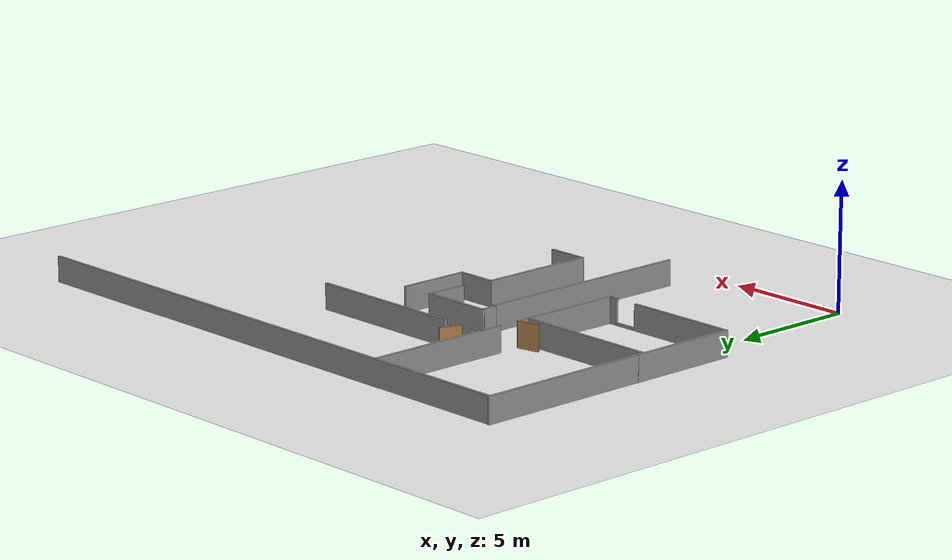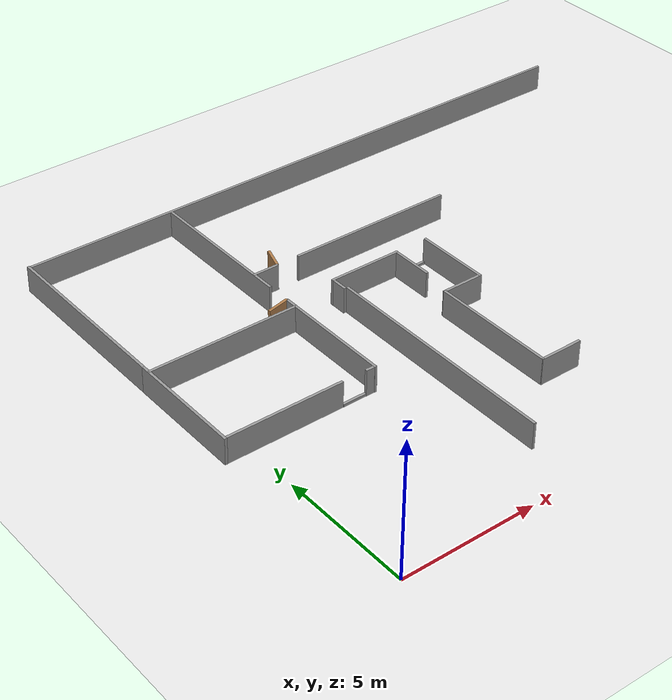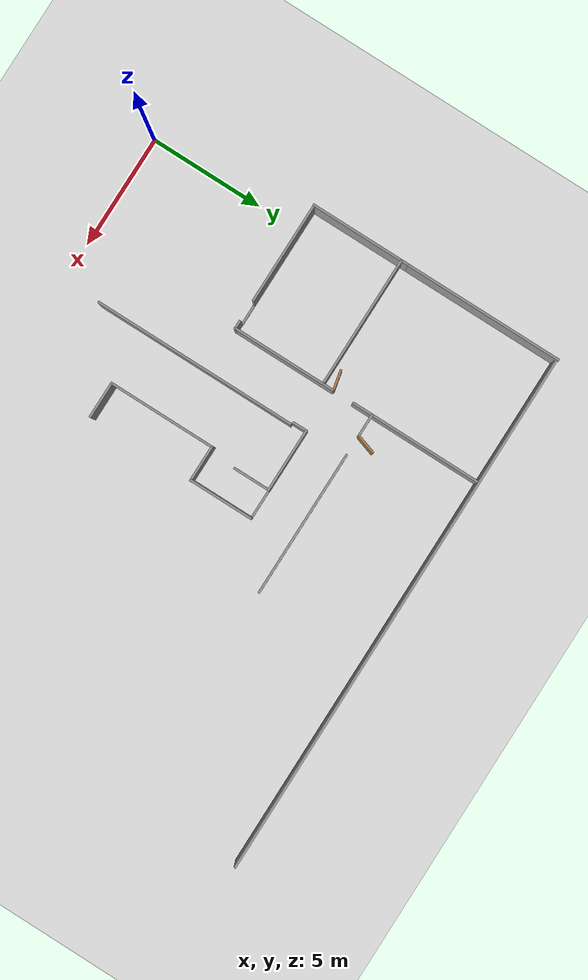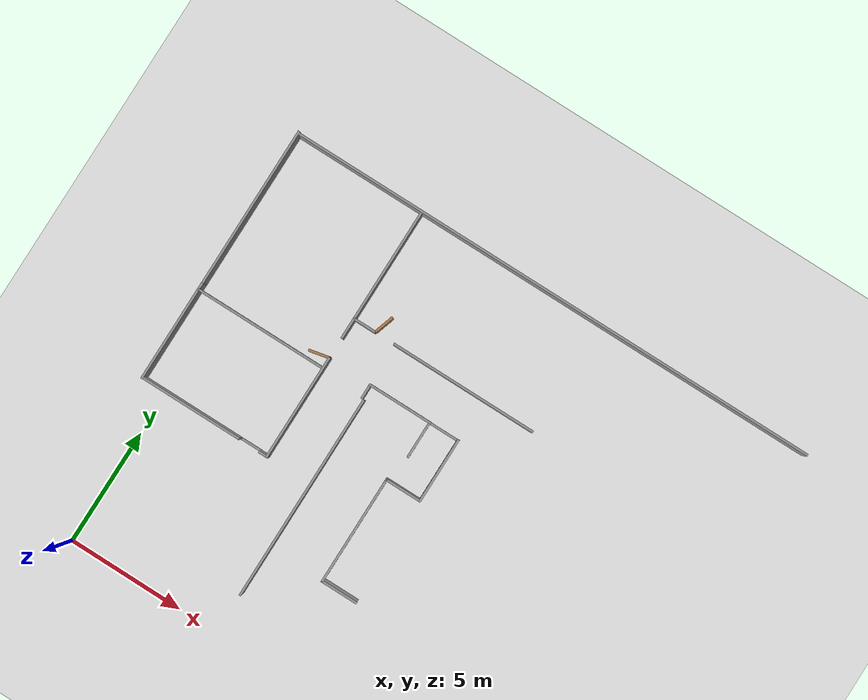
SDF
<sdf version="1.6">
 <world name="default">
  <model name="ground_plane">
   <static>1</static>
   <link name="link">
    <collision name="collision">
     <geometry><plane><normal>0 0 1</normal><size>100 100</size></plane></geometry>
     <surface><friction><ode><mu>100</mu><mu2>50</mu2></ode></friction></surface>
    </collision>
    <visual name="visual">
     <cast_shadows>0</cast_shadows>
     <geometry><plane><normal>0 0 1</normal><size>100 100</size></plane></geometry>
     <material>
      <script><uri>file://media/materials/scripts/gazebo.material</uri><name>Gazebo/WhiteGlow</name></script>
     </material>
    </visual>
   </link>
  </model>
  <model name="L81">
   <link name="link_clone">
    <pose>2.36987 17.6336 -0 0 -0 0</pose>
    <inertial>
     <mass>1.01184</mass>
     <inertia>
      <ixx>0.0851633</ixx>
      <ixy>0</ixy>
      <ixz>0</ixz>
      <iyy>4.20635</iyy>
      <iyz>0</iyz>
      <izz>4.12288</izz>
     </inertia>
    </inertial>
    <visual name="visual">
     <geometry><box><size>6.99182 0.1 1</size></box></geometry>
     <material>
      <script><name>Gazebo/Grey</name><uri>file://media/materials/scripts/gazebo.material</uri></script>
      <shader type="pixel"><normal_map>__default__</normal_map></shader>
      <ambient>0.3 0.3 0.3 1</ambient>
      <diffuse>0.7 0.7 0.7 1</diffuse>
      <specular>0.01 0.01 0.01 1</specular>
      <emissive>0 0 0 1</emissive>
     </material>
    </visual>
    <collision name="collision">
     <geometry><box><size>6.99182 0.1 1</size></box></geometry>
     <surface>
      <friction>
       <ode><mu>1</mu><mu2>1</mu2><fdir1>0 0 0</fdir1><slip1>0</slip1><slip2>0</slip2></ode>
       <torsional>
        <coefficient>1</coefficient>
        <patch_radius>0</patch_radius>
        <surface_radius>0</surface_radius>
        <use_patch_radius>1</use_patch_radius>
        <ode><slip>0</slip></ode>
       </torsional>
      </friction>
      <bounce><restitution_coefficient>0</restitution_coefficient><threshold>1e+06</threshold></bounce>
      <contact>
       <collide_without_contact>0</collide_without_contact>
       <collide_without_contact_bitmask>1</collide_without_contact_bitmask>
       <collide_bitmask>1</collide_bitmask>
       <ode>
        <soft_cfm>0</soft_cfm>
        <soft_erp>0.2</soft_erp>
        <kp>1e+13</kp>
        <kd>1</kd>
        <max_vel>0.01</max_vel>
        <min_depth>0</min_depth>
       </ode>
       <bullet>
        <split_impulse>1</split_impulse>
        <split_impulse_penetration_threshold>-0.01</split_impulse_penetration_threshold>
        <soft_cfm>0</soft_cfm>
        <soft_erp>0.2</soft_erp>
        <kp>1e+13</kp>
        <kd>1</kd>
       </bullet>
      </contact>
     </surface>
    </collision>
   </link>
   <link name="link_clone_0">
    <pose>-1.0415 29.3775 0 0 -0 0</pose>
    <inertial>
     <mass>1</mass>
     <inertia>
      <ixx>0.166667</ixx>
      <ixy>0</ixy>
      <ixz>0</ixz>
      <iyy>0.166667</iyy>
      <iyz>0</iyz>
      <izz>0.166667</izz>
     </inertia>
    </inertial>
    <visual name="visual">
     <geometry><box><size>0.1 23.38 1</size></box></geometry>
     <material>
      <script><name>Gazebo/Grey</name><uri>file://media/materials/scripts/gazebo.material</uri></script>
      <shader type="pixel"><normal_map>__default__</normal_map></shader>
      <ambient>0.3 0.3 0.3 1</ambient>
      <diffuse>0.7 0.7 0.7 1</diffuse>
      <specular>0.01 0.01 0.01 1</specular>
      <emissive>0 0 0 1</emissive>
     </material>
    </visual>
    <collision name="collision">
     <geometry><box><size>0.1 23.38 1</size></box></geometry>
     <surface>
      <friction>
       <ode><mu>1</mu><mu2>1</mu2><fdir1>0 0 0</fdir1><slip1>0</slip1><slip2>0</slip2></ode>
       <torsional>
        <coefficient>1</coefficient>
        <patch_radius>0</patch_radius>
        <surface_radius>0</surface_radius>
        <use_patch_radius>1</use_patch_radius>
        <ode><slip>0</slip></ode>
       </torsional>
      </friction>
      <bounce><restitution_coefficient>0</restitution_coefficient><threshold>1e+06</threshold></bounce>
      <contact>
       <collide_without_contact>0</collide_without_contact>
       <collide_without_contact_bitmask>1</collide_without_contact_bitmask>
       <collide_bitmask>1</collide_bitmask>
       <ode>
        <soft_cfm>0</soft_cfm>
        <soft_erp>0.2</soft_erp>
        <kp>1e+13</kp>
        <kd>1</kd>
        <max_vel>0.01</max_vel>
        <min_depth>0</min_depth>
       </ode>
       <bullet>
        <split_impulse>1</split_impulse>
        <split_impulse_penetration_threshold>-0.01</split_impulse_penetration_threshold>
        <soft_cfm>0</soft_cfm>
        <soft_erp>0.2</soft_erp>
        <kp>1e+13</kp>
        <kd>1</kd>
       </bullet>
      </contact>
     </surface>
    </collision>
   </link>
   <link name="link_clone_0_clone_0">
    <pose>3.89763 28.3864 0 0 -0 0</pose>
    <inertial>
     <mass>0.361309</mass>
     <inertia>
      <ixx>1.26708</ixx>
      <ixy>0</ixy>
      <ixz>0</ixz>
      <iyy>0.0304101</iyy>
      <iyz>0</iyz>
      <izz>1.23728</izz>
     </inertia>
    </inertial>
    <visual name="visual">
     <geometry><box><size>0.1 6.40961 1</size></box></geometry>
     <material>
      <script><name>Gazebo/Grey</name><uri>file://media/materials/scripts/gazebo.material</uri></script>
      <shader type="pixel"><normal_map>__default__</normal_map></shader>
      <ambient>0.3 0.3 0.3 1</ambient>
      <diffuse>0.7 0.7 0.7 1</diffuse>
      <specular>0.01 0.01 0.01 1</specular>
      <emissive>0 0 0 1</emissive>
     </material>
    </visual>
    <collision name="collision">
     <geometry><box><size>0.1 6.40961 1</size></box></geometry>
     <surface>
      <friction>
       <ode><mu>1</mu><mu2>1</mu2><fdir1>0 0 0</fdir1><slip1>0</slip1><slip2>0</slip2></ode>
       <torsional>
        <coefficient>1</coefficient>
        <patch_radius>0</patch_radius>
        <surface_radius>0</surface_radius>
        <use_patch_radius>1</use_patch_radius>
        <ode><slip>0</slip></ode>
       </torsional>
      </friction>
      <bounce><restitution_coefficient>0</restitution_coefficient><threshold>1e+06</threshold></bounce>
      <contact>
       <collide_without_contact>0</collide_without_contact>
       <collide_without_contact_bitmask>1</collide_without_contact_bitmask>
       <collide_bitmask>1</collide_bitmask>
       <ode>
        <soft_cfm>0</soft_cfm>
        <soft_erp>0.2</soft_erp>
        <kp>1e+13</kp>
        <kd>1</kd>
        <max_vel>0.01</max_vel>
        <min_depth>0</min_depth>
       </ode>
       <bullet>
        <split_impulse>1</split_impulse>
        <split_impulse_penetration_threshold>-0.01</split_impulse_penetration_threshold>
        <soft_cfm>0</soft_cfm>
        <soft_erp>0.2</soft_erp>
        <kp>1e+13</kp>
        <kd>1</kd>
       </bullet>
      </contact>
     </surface>
    </collision>
   </link>
   <link name="link_clone_0_clone_0_clone_0">
    <pose>6.17322 20.495 -0 0 -0 0</pose>
    <inertial>
     <mass>0.323432</mass>
     <inertia>
      <ixx>0.91426</ixx>
      <ixy>0</ixy>
      <ixz>0</ixz>
      <iyy>0.0272222</iyy>
      <iyz>0</iyz>
      <izz>0.887577</izz>
     </inertia>
    </inertial>
    <visual name="visual">
     <geometry><box><size>0.1 5.73768 1</size></box></geometry>
     <material>
      <script><name>Gazebo/Grey</name><uri>file://media/materials/scripts/gazebo.material</uri></script>
      <shader type="pixel"><normal_map>__default__</normal_map></shader>
      <ambient>0.3 0.3 0.3 1</ambient>
      <diffuse>0.7 0.7 0.7 1</diffuse>
      <specular>0.01 0.01 0.01 1</specular>
      <emissive>0 0 0 1</emissive>
     </material>
    </visual>
    <collision name="collision">
     <geometry><box><size>0.1 5.73768 1</size></box></geometry>
     <surface>
      <friction>
       <ode><mu>1</mu><mu2>1</mu2><fdir1>0 0 0</fdir1><slip1>0</slip1><slip2>0</slip2></ode>
       <torsional>
        <coefficient>1</coefficient>
        <patch_radius>0</patch_radius>
        <surface_radius>0</surface_radius>
        <use_patch_radius>1</use_patch_radius>
        <ode><slip>0</slip></ode>
       </torsional>
      </friction>
      <bounce><restitution_coefficient>0</restitution_coefficient><threshold>1e+06</threshold></bounce>
      <contact>
       <collide_without_contact>0</collide_without_contact>
       <collide_without_contact_bitmask>1</collide_without_contact_bitmask>
       <collide_bitmask>1</collide_bitmask>
       <ode>
        <soft_cfm>0</soft_cfm>
        <soft_erp>0.2</soft_erp>
        <kp>1e+13</kp>
        <kd>1</kd>
        <max_vel>0.01</max_vel>
        <min_depth>0</min_depth>
       </ode>
       <bullet>
        <split_impulse>1</split_impulse>
        <split_impulse_penetration_threshold>-0.01</split_impulse_penetration_threshold>
        <soft_cfm>0</soft_cfm>
        <soft_erp>0.2</soft_erp>
        <kp>1e+13</kp>
        <kd>1</kd>
       </bullet>
      </contact>
     </surface>
    </collision>
   </link>
   <link name="link_clone_0_clone_0_clone_1">
    <pose>3.89805 23.8318 -0 0 -0 0</pose>
    <inertial>
     <mass>0.0573636</mass>
     <inertia>
      <ixx>0.00973065</ixx>
      <ixy>0</ixy>
      <ixz>0</ixz>
      <iyy>0.0048281</iyy>
      <iyz>0</iyz>
      <izz>0.00499815</izz>
     </inertia>
    </inertial>
    <visual name="visual">
     <geometry><box><size>0.1 1.01763 1</size></box></geometry>
     <material>
      <script><name>Gazebo/Grey</name><uri>file://media/materials/scripts/gazebo.material</uri></script>
      <shader type="pixel"><normal_map>__default__</normal_map></shader>
      <ambient>0.3 0.3 0.3 1</ambient>
      <diffuse>0.7 0.7 0.7 1</diffuse>
      <specular>0.01 0.01 0.01 1</specular>
      <emissive>0 0 0 1</emissive>
     </material>
    </visual>
    <collision name="collision">
     <geometry><box><size>0.1 1.01763 1</size></box></geometry>
     <surface>
      <friction>
       <ode><mu>1</mu><mu2>1</mu2><fdir1>0 0 0</fdir1><slip1>0</slip1><slip2>0</slip2></ode>
       <torsional>
        <coefficient>1</coefficient>
        <patch_radius>0</patch_radius>
        <surface_radius>0</surface_radius>
        <use_patch_radius>1</use_patch_radius>
        <ode><slip>0</slip></ode>
       </torsional>
      </friction>
      <bounce><restitution_coefficient>0</restitution_coefficient><threshold>1e+06</threshold></bounce>
      <contact>
       <collide_without_contact>0</collide_without_contact>
       <collide_without_contact_bitmask>1</collide_without_contact_bitmask>
       <collide_bitmask>1</collide_bitmask>
       <ode>
        <soft_cfm>0</soft_cfm>
        <soft_erp>0.2</soft_erp>
        <kp>1e+13</kp>
        <kd>1</kd>
        <max_vel>0.01</max_vel>
        <min_depth>0</min_depth>
       </ode>
       <bullet>
        <split_impulse>1</split_impulse>
        <split_impulse_penetration_threshold>-0.01</split_impulse_penetration_threshold>
        <soft_cfm>0</soft_cfm>
        <soft_erp>0.2</soft_erp>
        <kp>1e+13</kp>
        <kd>1</kd>
       </bullet>
      </contact>
     </surface>
    </collision>
   </link>
   <link name="link_clone_0_clone_clone_0_clone_clone">
    <pose>5.73506 26.6335 -0 0 -0 0</pose>
    <inertial>
     <mass>1.01517</mass>
     <inertia><ixx>5.4708</ixx><ixy>0</ixy><ixz>0</ixz><iyy>0.0854436</iyy><iyz>0</iyz><izz>5.38705</izz></inertia>
    </inertial>
    <visual name="visual">
     <geometry><box><size>0.1 2.84 1</size></box></geometry>
     <material>
      <script><name>Gazebo/Grey</name><uri>file://media/materials/scripts/gazebo.material</uri></script>
      <shader type="pixel"><normal_map>__default__</normal_map></shader>
      <ambient>0.3 0.3 0.3 1</ambient>
      <diffuse>0.7 0.7 0.7 1</diffuse>
      <specular>0.01 0.01 0.01 1</specular>
      <emissive>0 0 0 1</emissive>
     </material>
    </visual>
    <collision name="collision">
     <geometry><box><size>0.1 2.84 1</size></box></geometry>
     <surface>
      <friction>
       <ode><mu>1</mu><mu2>1</mu2><fdir1>0 0 0</fdir1><slip1>0</slip1><slip2>0</slip2></ode>
       <torsional>
        <coefficient>1</coefficient>
        <patch_radius>0</patch_radius>
        <surface_radius>0</surface_radius>
        <use_patch_radius>1</use_patch_radius>
        <ode><slip>0</slip></ode>
       </torsional>
      </friction>
      <bounce><restitution_coefficient>0</restitution_coefficient><threshold>1e+06</threshold></bounce>
      <contact>
       <collide_without_contact>0</collide_without_contact>
       <collide_without_contact_bitmask>1</collide_without_contact_bitmask>
       <collide_bitmask>1</collide_bitmask>
       <ode>
        <soft_cfm>0</soft_cfm>
        <soft_erp>0.2</soft_erp>
        <kp>1e+13</kp>
        <kd>1</kd>
        <max_vel>0.01</max_vel>
        <min_depth>0</min_depth>
       </ode>
       <bullet>
        <split_impulse>1</split_impulse>
        <split_impulse_penetration_threshold>-0.01</split_impulse_penetration_threshold>
        <soft_cfm>0</soft_cfm>
        <soft_erp>0.2</soft_erp>
        <kp>1e+13</kp>
        <kd>1</kd>
       </bullet>
      </contact>
     </surface>
    </collision>
   </link>
   <link name="link_clone_0_clone_clone_0_clone_clone_clone">
    <pose>10.2214 19.8705 0 0 -0 0</pose>
    <inertial>
     <mass>1.58771</mass>
     <inertia><ixx>2.74262</ixx><ixy>0</ixy><ixz>0</ixz><iyy>0.133632</iyy><iyz>0</iyz><izz>2.61164</izz></inertia>
    </inertial>
    <visual name="visual">
     <geometry><box><size>0.1 4.44172 1</size></box></geometry>
     <material>
      <script><name>Gazebo/Grey</name><uri>file://media/materials/scripts/gazebo.material</uri></script>
      <shader type="pixel"><normal_map>__default__</normal_map></shader>
      <ambient>0.3 0.3 0.3 1</ambient>
      <diffuse>0.7 0.7 0.7 1</diffuse>
      <specular>0.01 0.01 0.01 1</specular>
      <emissive>0 0 0 1</emissive>
     </material>
    </visual>
    <collision name="collision">
     <geometry><box><size>0.1 4.44172 1</size></box></geometry>
     <surface>
      <friction>
       <ode><mu>1</mu><mu2>1</mu2><fdir1>0 0 0</fdir1><slip1>0</slip1><slip2>0</slip2></ode>
       <torsional>
        <coefficient>1</coefficient>
        <patch_radius>0</patch_radius>
        <surface_radius>0</surface_radius>
        <use_patch_radius>1</use_patch_radius>
        <ode><slip>0</slip></ode>
       </torsional>
      </friction>
      <bounce><restitution_coefficient>0</restitution_coefficient><threshold>1e+06</threshold></bounce>
      <contact>
       <collide_without_contact>0</collide_without_contact>
       <collide_without_contact_bitmask>1</collide_without_contact_bitmask>
       <collide_bitmask>1</collide_bitmask>
       <ode>
        <soft_cfm>0</soft_cfm>
        <soft_erp>0.2</soft_erp>
        <kp>1e+13</kp>
        <kd>1</kd>
        <max_vel>0.01</max_vel>
        <min_depth>0</min_depth>
       </ode>
       <bullet>
        <split_impulse>1</split_impulse>
        <split_impulse_penetration_threshold>-0.01</split_impulse_penetration_threshold>
        <soft_cfm>0</soft_cfm>
        <soft_erp>0.2</soft_erp>
        <kp>1e+13</kp>
        <kd>1</kd>
       </bullet>
      </contact>
     </surface>
    </collision>
   </link>
   <link name="link_clone_0_clone_clone_0_clone_clone_clone_1_clone_0_clone_clone_clone_2_clone">
    <pose>5.74785 28.6453 -0.456251 0 -0 0</pose>
    <inertial>
     <mass>0.433251</mass>
     <inertia>
      <ixx>0.0891427</ixx>
      <ixy>0</ixy>
      <ixz>0</ixz>
      <iyy>0.0364653</iyy>
      <iyz>0</iyz>
      <izz>0.0533995</izz>
     </inertia>
    </inertial>
    <visual name="visual">
     <geometry><box><size>0.1 1.21204 0.1</size></box></geometry>
     <material>
      <script><name>Gazebo/Grey</name><uri>file://media/materials/scripts/gazebo.material</uri></script>
      <shader type="pixel"><normal_map>__default__</normal_map></shader>
      <ambient>0.3 0.3 0.3 1</ambient>
      <diffuse>0.7 0.7 0.7 1</diffuse>
      <specular>0.01 0.01 0.01 1</specular>
      <emissive>0 0 0 1</emissive>
     </material>
    </visual>
    <collision name="collision">
     <geometry><box><size>0.1 1.21204 0.1</size></box></geometry>
     <surface>
      <friction>
       <ode><mu>1</mu><mu2>1</mu2><fdir1>0 0 0</fdir1><slip1>0</slip1><slip2>0</slip2></ode>
       <torsional>
        <coefficient>1</coefficient>
        <patch_radius>0</patch_radius>
        <surface_radius>0</surface_radius>
        <use_patch_radius>1</use_patch_radius>
        <ode><slip>0</slip></ode>
       </torsional>
      </friction>
      <bounce><restitution_coefficient>0</restitution_coefficient><threshold>1e+06</threshold></bounce>
      <contact>
       <collide_without_contact>0</collide_without_contact>
       <collide_without_contact_bitmask>1</collide_without_contact_bitmask>
       <collide_bitmask>1</collide_bitmask>
       <ode>
        <soft_cfm>0</soft_cfm>
        <soft_erp>0.2</soft_erp>
        <kp>1e+13</kp>
        <kd>1</kd>
        <max_vel>0.01</max_vel>
        <min_depth>0</min_depth>
       </ode>
       <bullet>
        <split_impulse>1</split_impulse>
        <split_impulse_penetration_threshold>-0.01</split_impulse_penetration_threshold>
        <soft_cfm>0</soft_cfm>
        <soft_erp>0.2</soft_erp>
        <kp>1e+13</kp>
        <kd>1</kd>
       </bullet>
      </contact>
     </surface>
    </collision>
   </link>
   <link name="link_clone_0_clone_clone_0_clone_clone_clone_1_clone_0_clone_clone_clone_2_clone_clone">
    <pose>10.2215 22.5571 -0.45236 0 -0 0</pose>
    <inertial>
     <mass>0.433251</mass>
     <inertia>
      <ixx>0.0891427</ixx>
      <ixy>0</ixy>
      <ixz>0</ixz>
      <iyy>0.0364653</iyy>
      <iyz>0</iyz>
      <izz>0.0533995</izz>
     </inertia>
    </inertial>
    <visual name="visual">
     <geometry><box><size>0.1 0.9 0.1</size></box></geometry>
     <material>
      <script><name>Gazebo/Grey</name><uri>file://media/materials/scripts/gazebo.material</uri></script>
      <shader type="pixel"><normal_map>__default__</normal_map></shader>
      <ambient>0.3 0.3 0.3 1</ambient>
      <diffuse>0.7 0.7 0.7 1</diffuse>
      <specular>0.01 0.01 0.01 1</specular>
      <emissive>0 0 0 1</emissive>
     </material>
    </visual>
    <collision name="collision">
     <geometry><box><size>0.1 0.9 0.1</size></box></geometry>
     <surface>
      <friction>
       <ode><mu>1</mu><mu2>1</mu2><fdir1>0 0 0</fdir1><slip1>0</slip1><slip2>0</slip2></ode>
       <torsional>
        <coefficient>1</coefficient>
        <patch_radius>0</patch_radius>
        <surface_radius>0</surface_radius>
        <use_patch_radius>1</use_patch_radius>
        <ode><slip>0</slip></ode>
       </torsional>
      </friction>
      <bounce><restitution_coefficient>0</restitution_coefficient><threshold>1e+06</threshold></bounce>
      <contact>
       <collide_without_contact>0</collide_without_contact>
       <collide_without_contact_bitmask>1</collide_without_contact_bitmask>
       <collide_bitmask>1</collide_bitmask>
       <ode>
        <soft_cfm>0</soft_cfm>
        <soft_erp>0.2</soft_erp>
        <kp>1e+13</kp>
        <kd>1</kd>
        <max_vel>0.01</max_vel>
        <min_depth>0</min_depth>
       </ode>
       <bullet>
        <split_impulse>1</split_impulse>
        <split_impulse_penetration_threshold>-0.01</split_impulse_penetration_threshold>
        <soft_cfm>0</soft_cfm>
        <soft_erp>0.2</soft_erp>
        <kp>1e+13</kp>
        <kd>1</kd>
       </bullet>
      </contact>
     </surface>
    </collision>
   </link>
   <link name="link_clone_0_clone_clone_0_clone_clone_clone_1_clone_1_clone_clone">
    <pose>13.1453 28.543 -0 0 -0 0</pose>
    <inertial>
     <mass>0.247554</mass>
     <inertia>
      <ixx>0.0756975</ixx>
      <ixy>0</ixy>
      <ixz>0</ixz>
      <iyy>0.0208358</iyy>
      <iyz>0</iyz>
      <izz>0.0552744</izz>
     </inertia>
    </inertial>
    <visual name="visual">
     <geometry><box><size>0.1 1.63383 1</size></box></geometry>
     <material>
      <script><name>Gazebo/Grey</name><uri>file://media/materials/scripts/gazebo.material</uri></script>
      <shader type="pixel"><normal_map>__default__</normal_map></shader>
      <ambient>0.3 0.3 0.3 1</ambient>
      <diffuse>0.7 0.7 0.7 1</diffuse>
      <specular>0.01 0.01 0.01 1</specular>
      <emissive>0 0 0 1</emissive>
     </material>
    </visual>
    <collision name="collision">
     <geometry><box><size>0.1 1.63383 1</size></box></geometry>
     <surface>
      <friction>
       <ode><mu>1</mu><mu2>1</mu2><fdir1>0 0 0</fdir1><slip1>0</slip1><slip2>0</slip2></ode>
       <torsional>
        <coefficient>1</coefficient>
        <patch_radius>0</patch_radius>
        <surface_radius>0</surface_radius>
        <use_patch_radius>1</use_patch_radius>
        <ode><slip>0</slip></ode>
       </torsional>
      </friction>
      <bounce><restitution_coefficient>0</restitution_coefficient><threshold>1e+06</threshold></bounce>
      <contact>
       <collide_without_contact>0</collide_without_contact>
       <collide_without_contact_bitmask>1</collide_without_contact_bitmask>
       <collide_bitmask>1</collide_bitmask>
       <ode>
        <soft_cfm>0</soft_cfm>
        <soft_erp>0.2</soft_erp>
        <kp>1e+13</kp>
        <kd>1</kd>
        <max_vel>0.01</max_vel>
        <min_depth>0</min_depth>
       </ode>
       <bullet>
        <split_impulse>1</split_impulse>
        <split_impulse_penetration_threshold>-0.01</split_impulse_penetration_threshold>
        <soft_cfm>0</soft_cfm>
        <soft_erp>0.2</soft_erp>
        <kp>1e+13</kp>
        <kd>1</kd>
       </bullet>
      </contact>
     </surface>
    </collision>
   </link>
   <link name="link_clone_0_clone_clone_0_clone_clone_clone_1_clone_1_clone_clone_clone">
    <pose>8.50084 28.5434 -0 0 -0 0</pose>
    <inertial>
     <mass>0.247554</mass>
     <inertia>
      <ixx>0.0756975</ixx>
      <ixy>0</ixy>
      <ixz>0</ixz>
      <iyy>0.0208358</iyy>
      <iyz>0</iyz>
      <izz>0.0552744</izz>
     </inertia>
    </inertial>
    <visual name="visual">
     <geometry><box><size>0.1 1.63383 1</size></box></geometry>
     <material>
      <script><name>Gazebo/Grey</name><uri>file://media/materials/scripts/gazebo.material</uri></script>
      <shader type="pixel"><normal_map>__default__</normal_map></shader>
      <ambient>0.3 0.3 0.3 1</ambient>
      <diffuse>0.7 0.7 0.7 1</diffuse>
      <specular>0.01 0.01 0.01 1</specular>
      <emissive>0 0 0 1</emissive>
     </material>
    </visual>
    <collision name="collision">
     <geometry><box><size>0.1 1.63383 1</size></box></geometry>
     <surface>
      <friction>
       <ode><mu>1</mu><mu2>1</mu2><fdir1>0 0 0</fdir1><slip1>0</slip1><slip2>0</slip2></ode>
       <torsional>
        <coefficient>1</coefficient>
        <patch_radius>0</patch_radius>
        <surface_radius>0</surface_radius>
        <use_patch_radius>1</use_patch_radius>
        <ode><slip>0</slip></ode>
       </torsional>
      </friction>
      <bounce><restitution_coefficient>0</restitution_coefficient><threshold>1e+06</threshold></bounce>
      <contact>
       <collide_without_contact>0</collide_without_contact>
       <collide_without_contact_bitmask>1</collide_without_contact_bitmask>
       <collide_bitmask>1</collide_bitmask>
       <ode>
        <soft_cfm>0</soft_cfm>
        <soft_erp>0.2</soft_erp>
        <kp>1e+13</kp>
        <kd>1</kd>
        <max_vel>0.01</max_vel>
        <min_depth>0</min_depth>
       </ode>
       <bullet>
        <split_impulse>1</split_impulse>
        <split_impulse_penetration_threshold>-0.01</split_impulse_penetration_threshold>
        <soft_cfm>0</soft_cfm>
        <soft_erp>0.2</soft_erp>
        <kp>1e+13</kp>
        <kd>1</kd>
       </bullet>
      </contact>
     </surface>
    </collision>
   </link>
   <link name="link_clone_0_clone_clone_0_clone_clone_clone_2">
    <pose>3.46414 24.4637 -0 0 -0 1.26237</pose>
    <inertial>
     <mass>1.01517</mass>
     <inertia><ixx>5.4708</ixx><ixy>0</ixy><ixz>0</ixz><iyy>0.0854436</iyy><iyz>0</iyz><izz>5.38705</izz></inertia>
    </inertial>
    <visual name="visual">
     <geometry><box><size>0.1 0.87 1</size></box></geometry>
     <material>
      <script><name>Gazebo/Wood</name><uri>file://media/materials/scripts/gazebo.material</uri></script>
      <shader type="pixel"><normal_map>__default__</normal_map></shader>
      <ambient>0.3 0.3 0.3 1</ambient>
      <diffuse>0.7 0.7 0.7 1</diffuse>
      <specular>0.01 0.01 0.01 1</specular>
      <emissive>0 0 0 1</emissive>
     </material>
    </visual>
    <collision name="collision">
     <geometry><box><size>0.1 0.87 1</size></box></geometry>
     <surface>
      <friction>
       <ode><mu>1</mu><mu2>1</mu2><fdir1>0 0 0</fdir1><slip1>0</slip1><slip2>0</slip2></ode>
       <torsional>
        <coefficient>1</coefficient>
        <patch_radius>0</patch_radius>
        <surface_radius>0</surface_radius>
        <use_patch_radius>1</use_patch_radius>
        <ode><slip>0</slip></ode>
       </torsional>
      </friction>
      <bounce><restitution_coefficient>0</restitution_coefficient><threshold>1e+06</threshold></bounce>
      <contact>
       <collide_without_contact>0</collide_without_contact>
       <collide_without_contact_bitmask>1</collide_without_contact_bitmask>
       <collide_bitmask>1</collide_bitmask>
       <ode>
        <soft_cfm>0</soft_cfm>
        <soft_erp>0.2</soft_erp>
        <kp>1e+13</kp>
        <kd>1</kd>
        <max_vel>0.01</max_vel>
        <min_depth>0</min_depth>
       </ode>
       <bullet>
        <split_impulse>1</split_impulse>
        <split_impulse_penetration_threshold>-0.01</split_impulse_penetration_threshold>
        <soft_cfm>0</soft_cfm>
        <soft_erp>0.2</soft_erp>
        <kp>1e+13</kp>
        <kd>1</kd>
       </bullet>
      </contact>
     </surface>
    </collision>
   </link>
   <link name="link_clone_0_clone_clone_0_clone_clone_clone_clone">
    <pose>10.2299 23.2089 -0 0 -0 0</pose>
    <inertial>
     <mass>0.148964</mass>
     <inertia>
      <ixx>0.0145696</ixx>
      <ixy>0</ixy>
      <ixz>0</ixz>
      <iyy>0.0125378</iyy>
      <iyz>0</iyz>
      <izz>0.00228003</izz>
     </inertia>
    </inertial>
    <visual name="visual">
     <geometry><box><size>0.1 0.416739 1</size></box></geometry>
     <material>
      <script><name>Gazebo/Grey</name><uri>file://media/materials/scripts/gazebo.material</uri></script>
      <shader type="pixel"><normal_map>__default__</normal_map></shader>
      <ambient>0.3 0.3 0.3 1</ambient>
      <diffuse>0.7 0.7 0.7 1</diffuse>
      <specular>0.01 0.01 0.01 1</specular>
      <emissive>0 0 0 1</emissive>
     </material>
    </visual>
    <collision name="collision">
     <geometry><box><size>0.1 0.416739 1</size></box></geometry>
     <surface>
      <friction>
       <ode><mu>1</mu><mu2>1</mu2><fdir1>0 0 0</fdir1><slip1>0</slip1><slip2>0</slip2></ode>
       <torsional>
        <coefficient>1</coefficient>
        <patch_radius>0</patch_radius>
        <surface_radius>0</surface_radius>
        <use_patch_radius>1</use_patch_radius>
        <ode><slip>0</slip></ode>
       </torsional>
      </friction>
      <bounce><restitution_coefficient>0</restitution_coefficient><threshold>1e+06</threshold></bounce>
      <contact>
       <collide_without_contact>0</collide_without_contact>
       <collide_without_contact_bitmask>1</collide_without_contact_bitmask>
       <collide_bitmask>1</collide_bitmask>
       <ode>
        <soft_cfm>0</soft_cfm>
        <soft_erp>0.2</soft_erp>
        <kp>1e+13</kp>
        <kd>1</kd>
        <max_vel>0.01</max_vel>
        <min_depth>0</min_depth>
       </ode>
       <bullet>
        <split_impulse>1</split_impulse>
        <split_impulse_penetration_threshold>-0.01</split_impulse_penetration_threshold>
        <soft_cfm>0</soft_cfm>
        <soft_erp>0.2</soft_erp>
        <kp>1e+13</kp>
        <kd>1</kd>
       </bullet>
      </contact>
     </surface>
    </collision>
   </link>
   <link name="link_clone_clone_clone_clone_0_clone">
    <pose>6.08043 25.2642 -0 0 -0 0</pose>
    <inertial>
     <mass>0.174115</mass>
     <inertia>
      <ixx>0.0146547</ixx>
      <ixy>0</ixy>
      <ixz>0</ixz>
      <iyy>0.0194752</iyy>
      <iyz>0</iyz>
      <izz>0.00511069</izz>
     </inertia>
    </inertial>
    <visual name="visual">
     <geometry><box><size>0.585002 0.1 1</size></box></geometry>
     <material>
      <script><name>Gazebo/Grey</name><uri>file://media/materials/scripts/gazebo.material</uri></script>
      <shader type="pixel"><normal_map>__default__</normal_map></shader>
      <ambient>0.3 0.3 0.3 1</ambient>
      <diffuse>0.7 0.7 0.7 1</diffuse>
      <specular>0.01 0.01 0.01 1</specular>
      <emissive>0 0 0 1</emissive>
     </material>
    </visual>
    <collision name="collision">
     <geometry><box><size>0.585002 0.1 1</size></box></geometry>
     <surface>
      <friction>
       <ode><mu>1</mu><mu2>1</mu2><fdir1>0 0 0</fdir1><slip1>0</slip1><slip2>0</slip2></ode>
       <torsional>
        <coefficient>1</coefficient>
        <patch_radius>0</patch_radius>
        <surface_radius>0</surface_radius>
        <use_patch_radius>1</use_patch_radius>
        <ode><slip>0</slip></ode>
       </torsional>
      </friction>
      <bounce><restitution_coefficient>0</restitution_coefficient><threshold>1e+06</threshold></bounce>
      <contact>
       <collide_without_contact>0</collide_without_contact>
       <collide_without_contact_bitmask>1</collide_without_contact_bitmask>
       <collide_bitmask>1</collide_bitmask>
       <ode>
        <soft_cfm>0</soft_cfm>
        <soft_erp>0.2</soft_erp>
        <kp>1e+13</kp>
        <kd>1</kd>
        <max_vel>0.01</max_vel>
        <min_depth>0</min_depth>
       </ode>
       <bullet>
        <split_impulse>1</split_impulse>
        <split_impulse_penetration_threshold>-0.01</split_impulse_penetration_threshold>
        <soft_cfm>0</soft_cfm>
        <soft_erp>0.2</soft_erp>
        <kp>1e+13</kp>
        <kd>1</kd>
       </bullet>
      </contact>
     </surface>
    </collision>
   </link>
   <link name="link_clone_clone_clone_clone_0_clone_clone">
    <pose>7.98225 23.3629 0 0 -0 0</pose>
    <inertial>
     <mass>1.37004</mass>
     <inertia><ixx>0.115312</ixx><ixy>0</ixy><ixz>0</ixz><iyy>2.53333</iyy><iyz>0</iyz><izz>2.4203</izz></inertia>
    </inertial>
    <visual name="visual">
     <geometry><box><size>4.60316 0.1 1</size></box></geometry>
     <material>
      <script><name>Gazebo/Grey</name><uri>file://media/materials/scripts/gazebo.material</uri></script>
      <shader type="pixel"><normal_map>__default__</normal_map></shader>
      <ambient>0.3 0.3 0.3 1</ambient>
      <diffuse>0.7 0.7 0.7 1</diffuse>
      <specular>0.01 0.01 0.01 1</specular>
      <emissive>0 0 0 1</emissive>
     </material>
    </visual>
    <collision name="collision">
     <geometry><box><size>4.60316 0.1 1</size></box></geometry>
     <surface>
      <friction>
       <ode><mu>1</mu><mu2>1</mu2><fdir1>0 0 0</fdir1><slip1>0</slip1><slip2>0</slip2></ode>
       <torsional>
        <coefficient>1</coefficient>
        <patch_radius>0</patch_radius>
        <surface_radius>0</surface_radius>
        <use_patch_radius>1</use_patch_radius>
        <ode><slip>0</slip></ode>
       </torsional>
      </friction>
      <bounce><restitution_coefficient>0</restitution_coefficient><threshold>1e+06</threshold></bounce>
      <contact>
       <collide_without_contact>0</collide_without_contact>
       <collide_without_contact_bitmask>1</collide_without_contact_bitmask>
       <collide_bitmask>1</collide_bitmask>
       <ode>
        <soft_cfm>0</soft_cfm>
        <soft_erp>0.2</soft_erp>
        <kp>1e+13</kp>
        <kd>1</kd>
        <max_vel>0.01</max_vel>
        <min_depth>0</min_depth>
       </ode>
       <bullet>
        <split_impulse>1</split_impulse>
        <split_impulse_penetration_threshold>-0.01</split_impulse_penetration_threshold>
        <soft_cfm>0</soft_cfm>
        <soft_erp>0.2</soft_erp>
        <kp>1e+13</kp>
        <kd>1</kd>
       </bullet>
      </contact>
     </surface>
    </collision>
   </link>
   <link name="link_clone_clone_clone_clone_0_clone_clone_1">
    <pose>10.8399 25.3692 0 0 -0 0</pose>
    <inertial>
     <mass>2.66793</mass>
     <inertia><ixx>0.224551</ixx><ixy>0</ixy><ixz>0</ixz><iyy>18.0865</iyy><iyz>0</iyz><izz>17.8664</izz></inertia>
    </inertial>
    <visual name="visual">
     <geometry><box><size>8.96386 0.1 1</size></box></geometry>
     <material>
      <script><name>Gazebo/Grey</name><uri>file://media/materials/scripts/gazebo.material</uri></script>
      <shader type="pixel"><normal_map>__default__</normal_map></shader>
      <ambient>0.3 0.3 0.3 1</ambient>
      <diffuse>0.7 0.7 0.7 1</diffuse>
      <specular>0.01 0.01 0.01 1</specular>
      <emissive>0 0 0 1</emissive>
     </material>
    </visual>
    <collision name="collision">
     <geometry><box><size>8.96386 0.1 1</size></box></geometry>
     <surface>
      <friction>
       <ode><mu>1</mu><mu2>1</mu2><fdir1>0 0 0</fdir1><slip1>0</slip1><slip2>0</slip2></ode>
       <torsional>
        <coefficient>1</coefficient>
        <patch_radius>0</patch_radius>
        <surface_radius>0</surface_radius>
        <use_patch_radius>1</use_patch_radius>
        <ode><slip>0</slip></ode>
       </torsional>
      </friction>
      <bounce><restitution_coefficient>0</restitution_coefficient><threshold>1e+06</threshold></bounce>
      <contact>
       <collide_without_contact>0</collide_without_contact>
       <collide_without_contact_bitmask>1</collide_without_contact_bitmask>
       <collide_bitmask>1</collide_bitmask>
       <ode>
        <soft_cfm>0</soft_cfm>
        <soft_erp>0.2</soft_erp>
        <kp>1e+13</kp>
        <kd>1</kd>
        <max_vel>0.01</max_vel>
        <min_depth>0</min_depth>
       </ode>
       <bullet>
        <split_impulse>1</split_impulse>
        <split_impulse_penetration_threshold>-0.01</split_impulse_penetration_threshold>
        <soft_cfm>0</soft_cfm>
        <soft_erp>0.2</soft_erp>
        <kp>1e+13</kp>
        <kd>1</kd>
       </bullet>
      </contact>
     </surface>
    </collision>
   </link>
   <link name="link_clone_clone_clone_clone_0_clone_clone_clone_0_clone_0_clone_clone">
    <pose>6.56239 28.0002 0 0 -0 0</pose>
    <inertial>
     <mass>0.464896</mass>
     <inertia>
      <ixx>0.0391287</ixx>
      <ixy>0</ixy>
      <ixz>0</ixz>
      <iyy>0.133262</iyy>
      <iyz>0</iyz>
      <izz>0.0949085</izz>
     </inertia>
    </inertial>
    <visual name="visual">
     <geometry><box><size>1.56199 0.1 1</size></box></geometry>
     <material>
      <script><name>Gazebo/Grey</name><uri>file://media/materials/scripts/gazebo.material</uri></script>
      <shader type="pixel"><normal_map>__default__</normal_map></shader>
      <ambient>0.3 0.3 0.3 1</ambient>
      <diffuse>0.7 0.7 0.7 1</diffuse>
      <specular>0.01 0.01 0.01 1</specular>
      <emissive>0 0 0 1</emissive>
     </material>
    </visual>
    <collision name="collision">
     <geometry><box><size>1.56199 0.1 1</size></box></geometry>
     <surface>
      <friction>
       <ode><mu>1</mu><mu2>1</mu2><fdir1>0 0 0</fdir1><slip1>0</slip1><slip2>0</slip2></ode>
       <torsional>
        <coefficient>1</coefficient>
        <patch_radius>0</patch_radius>
        <surface_radius>0</surface_radius>
        <use_patch_radius>1</use_patch_radius>
        <ode><slip>0</slip></ode>
       </torsional>
      </friction>
      <bounce><restitution_coefficient>0</restitution_coefficient><threshold>1e+06</threshold></bounce>
      <contact>
       <collide_without_contact>0</collide_without_contact>
       <collide_without_contact_bitmask>1</collide_without_contact_bitmask>
       <collide_bitmask>1</collide_bitmask>
       <ode>
        <soft_cfm>0</soft_cfm>
        <soft_erp>0.2</soft_erp>
        <kp>1e+13</kp>
        <kd>1</kd>
        <max_vel>0.01</max_vel>
        <min_depth>0</min_depth>
       </ode>
       <bullet>
        <split_impulse>1</split_impulse>
        <split_impulse_penetration_threshold>-0.01</split_impulse_penetration_threshold>
        <soft_cfm>0</soft_cfm>
        <soft_erp>0.2</soft_erp>
        <kp>1e+13</kp>
        <kd>1</kd>
       </bullet>
      </contact>
     </surface>
    </collision>
   </link>
   <link name="link_clone_clone_clone_clone_0_clone_clone_clone_0_clone_0_clone_clone_0">
    <pose>10.823 27.7711 -0 0 -0 0</pose>
    <inertial>
     <mass>1.39432</mass>
     <inertia><ixx>0.117356</ixx><ixy>0</ixy><ixz>0</ixz><iyy>2.66626</iyy><iyz>0</iyz><izz>2.55123</izz></inertia>
    </inertial>
    <visual name="visual">
     <geometry><box><size>4.68473 0.1 1</size></box></geometry>
     <material>
      <script><name>Gazebo/Grey</name><uri>file://media/materials/scripts/gazebo.material</uri></script>
      <shader type="pixel"><normal_map>__default__</normal_map></shader>
      <ambient>0.3 0.3 0.3 1</ambient>
      <diffuse>0.7 0.7 0.7 1</diffuse>
      <specular>0.01 0.01 0.01 1</specular>
      <emissive>0 0 0 1</emissive>
     </material>
    </visual>
    <collision name="collision">
     <geometry><box><size>4.68473 0.1 1</size></box></geometry>
     <surface>
      <friction>
       <ode><mu>1</mu><mu2>1</mu2><fdir1>0 0 0</fdir1><slip1>0</slip1><slip2>0</slip2></ode>
       <torsional>
        <coefficient>1</coefficient>
        <patch_radius>0</patch_radius>
        <surface_radius>0</surface_radius>
        <use_patch_radius>1</use_patch_radius>
        <ode><slip>0</slip></ode>
       </torsional>
      </friction>
      <bounce><restitution_coefficient>0</restitution_coefficient><threshold>1e+06</threshold></bounce>
      <contact>
       <collide_without_contact>0</collide_without_contact>
       <collide_without_contact_bitmask>1</collide_without_contact_bitmask>
       <collide_bitmask>1</collide_bitmask>
       <ode>
        <soft_cfm>0</soft_cfm>
        <soft_erp>0.2</soft_erp>
        <kp>1e+13</kp>
        <kd>1</kd>
        <max_vel>0.01</max_vel>
        <min_depth>0</min_depth>
       </ode>
       <bullet>
        <split_impulse>1</split_impulse>
        <split_impulse_penetration_threshold>-0.01</split_impulse_penetration_threshold>
        <soft_cfm>0</soft_cfm>
        <soft_erp>0.2</soft_erp>
        <kp>1e+13</kp>
        <kd>1</kd>
       </bullet>
      </contact>
     </surface>
    </collision>
   </link>
   <link name="link_clone_clone_clone_clone_0_clone_clone_clone_0_clone_0_clone_clone_clone">
    <pose>5.77933 22.9348 -0 0 -0 1.78169</pose>
    <inertial>
     <mass>0.464896</mass>
     <inertia>
      <ixx>0.0391287</ixx>
      <ixy>0</ixy>
      <ixz>0</ixz>
      <iyy>0.133262</iyy>
      <iyz>0</iyz>
      <izz>0.0949085</izz>
     </inertia>
    </inertial>
    <visual name="visual">
     <geometry><box><size>0.87 0.1 1</size></box></geometry>
     <material>
      <script><name>Gazebo/Wood</name><uri>file://media/materials/scripts/gazebo.material</uri></script>
      <shader type="pixel"><normal_map>__default__</normal_map></shader>
      <ambient>0.3 0.3 0.3 1</ambient>
      <diffuse>0.7 0.7 0.7 1</diffuse>
      <specular>0.01 0.01 0.01 1</specular>
      <emissive>0 0 0 1</emissive>
     </material>
    </visual>
    <collision name="collision">
     <geometry><box><size>0.87 0.1 1</size></box></geometry>
     <surface>
      <friction>
       <ode><mu>1</mu><mu2>1</mu2><fdir1>0 0 0</fdir1><slip1>0</slip1><slip2>0</slip2></ode>
       <torsional>
        <coefficient>1</coefficient>
        <patch_radius>0</patch_radius>
        <surface_radius>0</surface_radius>
        <use_patch_radius>1</use_patch_radius>
        <ode><slip>0</slip></ode>
       </torsional>
      </friction>
      <bounce><restitution_coefficient>0</restitution_coefficient><threshold>1e+06</threshold></bounce>
      <contact>
       <collide_without_contact>0</collide_without_contact>
       <collide_without_contact_bitmask>1</collide_without_contact_bitmask>
       <collide_bitmask>1</collide_bitmask>
       <ode>
        <soft_cfm>0</soft_cfm>
        <soft_erp>0.2</soft_erp>
        <kp>1e+13</kp>
        <kd>1</kd>
        <max_vel>0.01</max_vel>
        <min_depth>0</min_depth>
       </ode>
       <bullet>
        <split_impulse>1</split_impulse>
        <split_impulse_penetration_threshold>-0.01</split_impulse_penetration_threshold>
        <soft_cfm>0</soft_cfm>
        <soft_erp>0.2</soft_erp>
        <kp>1e+13</kp>
        <kd>1</kd>
       </bullet>
      </contact>
     </surface>
    </collision>
   </link>
   <link name="link_clone_clone_clone_clone_0_clone_clone_clone_0_clone_1">
    <pose>7.11956 29.3087 -0 0 -0 0</pose>
    <inertial>
     <mass>0.851308</mass>
     <inertia>
      <ixx>0.0716518</ixx>
      <ixy>0</ixy>
      <ixz>0</ixz>
      <iyy>0.651336</iyy>
      <iyz>0</iyz>
      <izz>0.581103</izz>
     </inertia>
    </inertial>
    <visual name="visual">
     <geometry><box><size>2.86028 0.1 1</size></box></geometry>
     <material>
      <script><name>Gazebo/Grey</name><uri>file://media/materials/scripts/gazebo.material</uri></script>
      <shader type="pixel"><normal_map>__default__</normal_map></shader>
      <ambient>0.3 0.3 0.3 1</ambient>
      <diffuse>0.7 0.7 0.7 1</diffuse>
      <specular>0.01 0.01 0.01 1</specular>
      <emissive>0 0 0 1</emissive>
     </material>
    </visual>
    <collision name="collision">
     <geometry><box><size>2.86028 0.1 1</size></box></geometry>
     <surface>
      <friction>
       <ode><mu>1</mu><mu2>1</mu2><fdir1>0 0 0</fdir1><slip1>0</slip1><slip2>0</slip2></ode>
       <torsional>
        <coefficient>1</coefficient>
        <patch_radius>0</patch_radius>
        <surface_radius>0</surface_radius>
        <use_patch_radius>1</use_patch_radius>
        <ode><slip>0</slip></ode>
       </torsional>
      </friction>
      <bounce><restitution_coefficient>0</restitution_coefficient><threshold>1e+06</threshold></bounce>
      <contact>
       <collide_without_contact>0</collide_without_contact>
       <collide_without_contact_bitmask>1</collide_without_contact_bitmask>
       <collide_bitmask>1</collide_bitmask>
       <ode>
        <soft_cfm>0</soft_cfm>
        <soft_erp>0.2</soft_erp>
        <kp>1e+13</kp>
        <kd>1</kd>
        <max_vel>0.01</max_vel>
        <min_depth>0</min_depth>
       </ode>
       <bullet>
        <split_impulse>1</split_impulse>
        <split_impulse_penetration_threshold>-0.01</split_impulse_penetration_threshold>
        <soft_cfm>0</soft_cfm>
        <soft_erp>0.2</soft_erp>
        <kp>1e+13</kp>
        <kd>1</kd>
       </bullet>
      </contact>
     </surface>
    </collision>
   </link>
   <link name="link_clone_clone_clone_clone_0_clone_clone_clone_1">
    <pose>1.90686 23.3589 0 0 -0 0</pose>
    <inertial>
     <mass>1.72479</mass>
     <inertia><ixx>0.14517</ixx><ixy>0</ixy><ixz>0</ixz><iyy>4.9707</iyy><iyz>0</iyz><izz>4.82841</izz></inertia>
    </inertial>
    <visual name="visual">
     <geometry><box><size>5.79508 0.1 1</size></box></geometry>
     <material>
      <script><name>Gazebo/Grey</name><uri>file://media/materials/scripts/gazebo.material</uri></script>
      <shader type="pixel"><normal_map>__default__</normal_map></shader>
      <ambient>0.3 0.3 0.3 1</ambient>
      <diffuse>0.7 0.7 0.7 1</diffuse>
      <specular>0.01 0.01 0.01 1</specular>
      <emissive>0 0 0 1</emissive>
     </material>
    </visual>
    <collision name="collision">
     <geometry><box><size>5.79508 0.1 1</size></box></geometry>
     <surface>
      <friction>
       <ode><mu>1</mu><mu2>1</mu2><fdir1>0 0 0</fdir1><slip1>0</slip1><slip2>0</slip2></ode>
       <torsional>
        <coefficient>1</coefficient>
        <patch_radius>0</patch_radius>
        <surface_radius>0</surface_radius>
        <use_patch_radius>1</use_patch_radius>
        <ode><slip>0</slip></ode>
       </torsional>
      </friction>
      <bounce><restitution_coefficient>0</restitution_coefficient><threshold>1e+06</threshold></bounce>
      <contact>
       <collide_without_contact>0</collide_without_contact>
       <collide_without_contact_bitmask>1</collide_without_contact_bitmask>
       <collide_bitmask>1</collide_bitmask>
       <ode>
        <soft_cfm>0</soft_cfm>
        <soft_erp>0.2</soft_erp>
        <kp>1e+13</kp>
        <kd>1</kd>
        <max_vel>0.01</max_vel>
        <min_depth>0</min_depth>
       </ode>
       <bullet>
        <split_impulse>1</split_impulse>
        <split_impulse_penetration_threshold>-0.01</split_impulse_penetration_threshold>
        <soft_cfm>0</soft_cfm>
        <soft_erp>0.2</soft_erp>
        <kp>1e+13</kp>
        <kd>1</kd>
       </bullet>
      </contact>
     </surface>
    </collision>
   </link>
   <link name="link_clone_clone_clone_clone_clone_0">
    <pose>8.06914 17.6314 -0 0 -0 0</pose>
    <inertial>
     <mass>1</mass>
     <inertia>
      <ixx>0.166667</ixx>
      <ixy>0</ixy>
      <ixz>0</ixz>
      <iyy>0.166667</iyy>
      <iyz>0</iyz>
      <izz>0.166667</izz>
     </inertia>
    </inertial>
    <visual name="visual">
     <geometry><box><size>4.42 0.1 1</size></box></geometry>
     <material>
      <script><name>Gazebo/Grey</name><uri>file://media/materials/scripts/gazebo.material</uri></script>
      <shader type="pixel"><normal_map>__default__</normal_map></shader>
      <ambient>0.3 0.3 0.3 1</ambient>
      <diffuse>0.7 0.7 0.7 1</diffuse>
      <specular>0.01 0.01 0.01 1</specular>
      <emissive>0 0 0 1</emissive>
     </material>
    </visual>
    <collision name="collision">
     <geometry><box><size>4.42 0.1 1</size></box></geometry>
     <surface>
      <friction>
       <ode><mu>1</mu><mu2>1</mu2><fdir1>0 0 0</fdir1><slip1>0</slip1><slip2>0</slip2></ode>
       <torsional>
        <coefficient>1</coefficient>
        <patch_radius>0</patch_radius>
        <surface_radius>0</surface_radius>
        <use_patch_radius>1</use_patch_radius>
        <ode><slip>0</slip></ode>
       </torsional>
      </friction>
      <bounce><restitution_coefficient>0</restitution_coefficient><threshold>1e+06</threshold></bounce>
      <contact>
       <collide_without_contact>0</collide_without_contact>
       <collide_without_contact_bitmask>1</collide_without_contact_bitmask>
       <collide_bitmask>1</collide_bitmask>
       <ode>
        <soft_cfm>0</soft_cfm>
        <soft_erp>0.2</soft_erp>
        <kp>1e+13</kp>
        <kd>1</kd>
        <max_vel>0.01</max_vel>
        <min_depth>0</min_depth>
       </ode>
       <bullet>
        <split_impulse>1</split_impulse>
        <split_impulse_penetration_threshold>-0.01</split_impulse_penetration_threshold>
        <soft_cfm>0</soft_cfm>
        <soft_erp>0.2</soft_erp>
        <kp>1e+13</kp>
        <kd>1</kd>
       </bullet>
      </contact>
     </surface>
    </collision>
   </link>
   <static>1</static>
   <pose>-18.6342 17.1649 0.502995 -9.9e-05 2e-06 -1.56996</pose>
  </model>
 </world>
</sdf>
